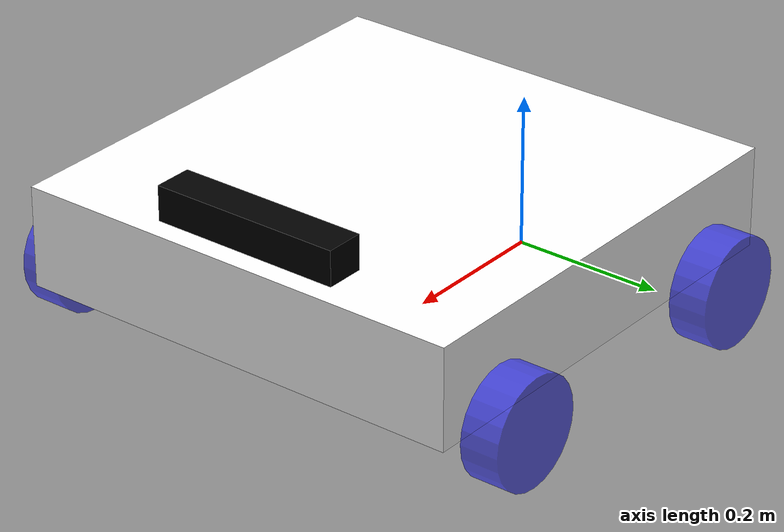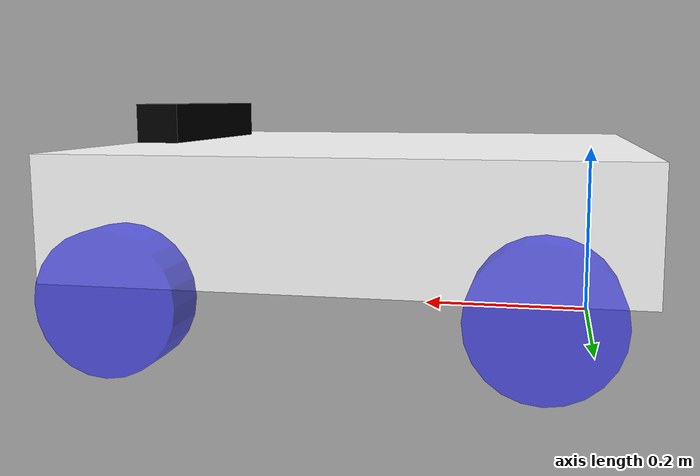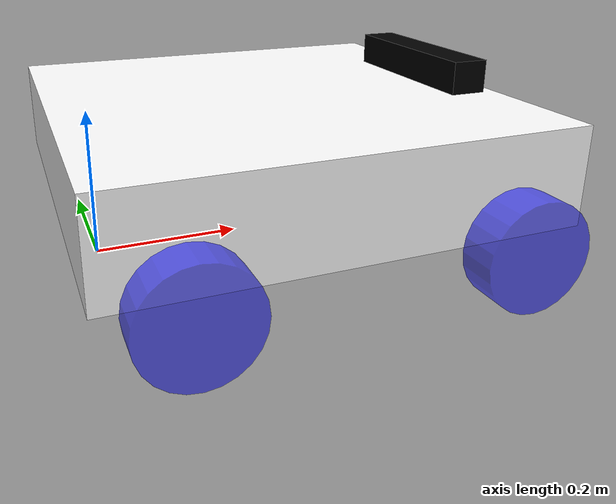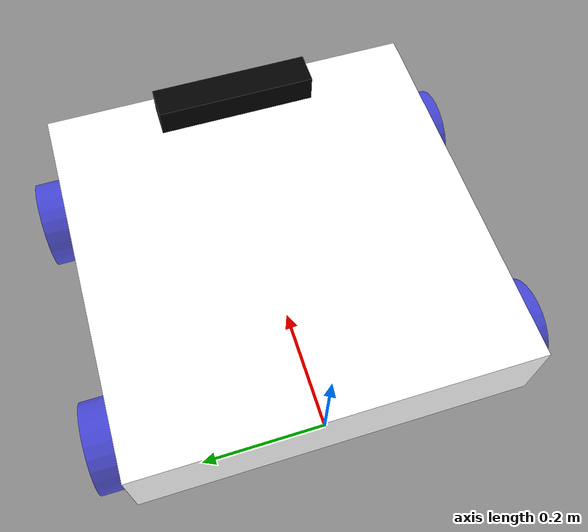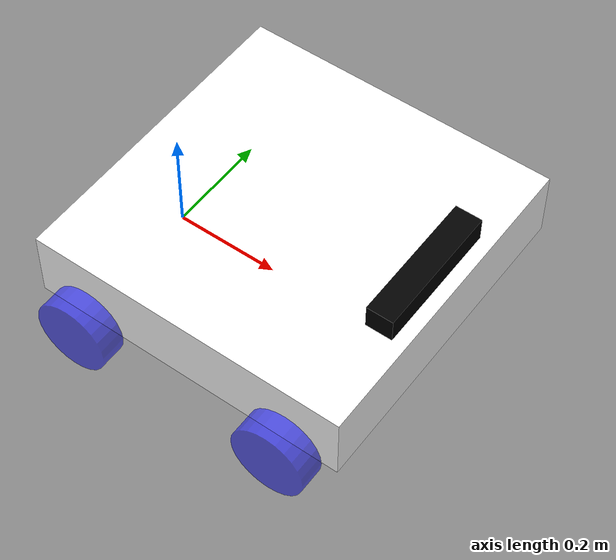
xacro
<?xml version="1.0"?>
<robot xmlns:xacro="http://www.ros.org/wiki/xacro"  name="robot">

    <xacro:include filename="robot_core.xacro"/>
    <xacro:include filename="ros2_control.xacro"/>
    <xacro:include filename="camera.xacro"/>

</robot>

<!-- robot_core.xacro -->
<robot xmlns:xacro="http://www.ros.org/wiki/xacro">

    <!--INCLUDES-->

    <xacro:include filename="inertial_macros.xacro"/>

    <!-- COLORS-->

    <material name="white">
        <color rgba="1 1 1 1"/>
    </material>

    <material name="green">
        <color rgba="0 0.6 0 1"/>
    </material>

    <material name="yellow">
        <color rgba="0.8 0.8 0 1"/>
    </material>

    <material name="blue">
        <color rgba="0.2 0.2 1 0.7"/>
    </material>

    <material name="black">
        <color rgba="0 0 0 1"/>
    </material>

    <!-- BASE LINK-->

    <link name="base_link">

    </link>

    <!-- CHASSIS LINK-->

    <joint name="chassis_joint" type="fixed">
        <parent link="base_link"/>
        <child link="chassis_link"/>
        <origin xyz="0.1 0 0.05" rpy="0 0 0"/>
    </joint>

    <link name="chassis_link">
        <visual>
            <origin xyz="0.15 0 0.09" rpy="0 0 0"/>
            <geometry>
                <box size="0.6 0.6 0.13"/>
            </geometry>
            <material name="white"/>
        </visual>
        <collision>
            <origin xyz="0.15 0 0.09" rpy="0 0 0"/>
            <geometry>
                <box size="0.6 0.6 0.13"/>
            </geometry>
        </collision>
        <xacro:inertial_box mass="18" x="0.6" y="0.6" z="0.13">
            <origin xyz="0.15 0 0.09" rpy="0 0 0"/>
        </xacro:inertial_box>
    </link>

    <gazebo reference="chassis">
        <material>Gazebo/White</material>
    </gazebo>

    <!-- TOP LEFT WHEEL LINK-->

    <joint name="top_left_wheel_joint" type="continuous">
        <parent link="base_link"/>
        <child link="top_left_wheel_link"/>
        <origin xyz="0.45 0.325 0.07" rpy="-${pi/2} 0 0"/>
        <axis xyz="0 0 1"/>

    </joint>

    <link name="top_left_wheel_link">
        <visual>
            <geometry>
                <cylinder radius="0.07" length="0.05"/>
            </geometry>
            <material name="blue"/>
        </visual>
        <collision>
            <geometry>
                <cylinder radius="0.07" length="0.05"/>
            </geometry>
        </collision>
        <xacro:inertial_cylinder mass="0.5" length="0.05" radius="0.07">
            <origin xyz="0.45 0.325 0.07" rpy="0 0 0"/>
        </xacro:inertial_cylinder>

    </link>

    <gazebo reference="top_left_wheel">
        <material>blue</material>
    </gazebo>

    <!-- TOP RIGHT WHEEL LINK-->

    <joint name="top_right_wheel_joint" type="continuous">
        <parent link="base_link"/>
        <child link="top_right_wheel_link"/>
        <origin xyz="0.45 -0.325 0.07" rpy="${pi/2} 0 0"/>
        <axis xyz="0 0 -1"/>

    </joint>

    <link name="top_right_wheel_link">
        <visual>
            <geometry>
                <cylinder radius="0.07" length="0.05"/>
            </geometry>
            <material name="blue"/>
        </visual>
        <collision>
            <geometry>
                <cylinder radius="0.07" length="0.05"/>
            </geometry>
        </collision>
        <xacro:inertial_cylinder mass="0.5" length="0.05" radius="0.07">
            <origin xyz="0.45 -0.325 0.07" rpy="0 0 0"/>
        </xacro:inertial_cylinder>

    </link>

    <gazebo reference="top_right_wheel">
        <material>blue</material>
    </gazebo>

    <!-- BOTTOM LEFT WHEEL LINK-->

    <joint name="bottom_left_wheel_joint" type="continuous">
        <parent link="base_link"/>
        <child link="bottom_left_wheel_link"/>
        <origin xyz="0.05 0.325 0.07" rpy="-${pi/2} 0 0"/>
        <axis xyz="0 0 1"/>

    </joint>

    <link name="bottom_left_wheel_link">
        <visual>
            <geometry>
                <cylinder radius="0.07" length="0.05"/>
            </geometry>
            <material name="blue"/>
        </visual>
        <collision>
            <geometry>
                <cylinder radius="0.07" length="0.05"/>
            </geometry>
        </collision>
        <xacro:inertial_cylinder mass="0.5" length="0.05" radius="0.07">
            <origin xyz="0.05 0.325 0.07" rpy="0 0 0"/>
        </xacro:inertial_cylinder>

    </link>

    <gazebo reference="bottom_left_wheel">
        <material>blue</material>
    </gazebo>

    <!-- BOTTOM RIGHT WHEEL LINK-->

    <joint name="bottom_right_wheel_joint" type="continuous">
        <parent link="base_link"/>
        <child link="bottom_right_wheel_link"/>
        <origin xyz="0.05 -0.325 0.07" rpy="${pi/2} 0 0"/>
        <axis xyz="0 0 -1"/>

    </joint>

    <link name="bottom_right_wheel_link">
        <visual>
            <geometry>
                <cylinder radius="0.07" length="0.05"/>
            </geometry>
            <material name="blue"/>
        </visual>
        <collision>
            <geometry>
                <cylinder radius="0.07" length="0.05"/>
            </geometry>
        </collision>
        <xacro:inertial_cylinder mass="0.5" length="0.05" radius="0.07">
            <origin xyz="0.05 -0.325 0.07" rpy="0 0 0"/>
        </xacro:inertial_cylinder>

    </link>

    <gazebo reference="bottom_right_wheel">
        <material>blue</material>
    </gazebo>

</robot>

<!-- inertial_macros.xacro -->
<robot xmlns:xacro="http://www.ros.org/wiki/xacro" name="robot">

    <!-- Specify some standard inertial calculations https://en.wikipedia.org/wiki/List_of_moments_of_inertia -->
    <!-- These make use of xacro's mathematical functionality -->

    <xacro:macro name="inertial_sphere" params="mass radius *origin">
        <inertial>
            <xacro:insert_block name="origin"/>
            <mass value="${mass}" />
            <inertia ixx="${(2/5) * mass * (radius*radius)}" ixy="0.0" ixz="0.0"
                    iyy="${(2/5) * mass * (radius*radius)}" iyz="0.0"
                    izz="${(2/5) * mass * (radius*radius)}" />
        </inertial>
    </xacro:macro>

    <xacro:macro name="inertial_box" params="mass x y z *origin">
        <inertial>
            <xacro:insert_block name="origin"/>
            <mass value="${mass}" />
            <inertia ixx="${(1/12) * mass * (y*y+z*z)}" ixy="0.0" ixz="0.0"
                    iyy="${(1/12) * mass * (x*x+z*z)}" iyz="0.0"
                    izz="${(1/12) * mass * (x*x+y*y)}" />
        </inertial>
    </xacro:macro>

    <xacro:macro name="inertial_cylinder" params="mass length radius *origin">
        <inertial>
            <xacro:insert_block name="origin"/>
            <mass value="${mass}" />
            <inertia ixx="${(1/12) * mass * (3*radius*radius + length*length)}" ixy="0.0" ixz="0.0"
                    iyy="${(1/12) * mass * (3*radius*radius + length*length)}" iyz="0.0"
                    izz="${(1/2) * mass * (radius*radius)}" />
        </inertial>
    </xacro:macro>

</robot>

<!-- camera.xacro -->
<robot xmlns:xacro="http://www.ros.org/wiki/xacro" >

    <joint name="camera_joint" type="fixed">
        <parent link="chassis_link"/>
        <child link="camera_link"/>
        <origin xyz="0.4 0 0.18" rpy="0 0 0"/>
    </joint>

    <link name="camera_link">
        <visual>
            <geometry>
                <box size="0.05 0.25 0.045"/>
            </geometry>
            <material name="black"/>
        </visual>
    </link>

    <joint name="camera_optical_joint" type="fixed">
        <parent link="camera_link"/>
        <child link="camera_link_optical"/>
        <origin xyz="0 0 0" rpy="${-pi/2} 0 ${-pi/2}"/>
    </joint>

    <link name="camera_link_optical"></link>

    <gazebo reference="camera_link">
        <material>black</material>

        <sensor name="camera" type="camera">
            <pose> 0 0 0 0 0 0 </pose>
            <visualize>true</visualize>
            <update_rate>10</update_rate>
            <camera>
                <camera_info_topic>camera/camera_info</camera_info_topic>
                <horizontal_fov>1.089</horizontal_fov>
                <image>
                    <format>R8G8B8</format>
                    <width>640</width>
                    <height>480</height>
                </image>
                <clip>
                    <near>0.1</near>
                    <far>15</far>
                </clip>
                <noise>
                    <type>gaussian</type>
                    <mean>0.0</mean>
                    <stddev>0.007</stddev>
                </noise>
                <optical_frame_id>camera_link_optical</optical_frame_id>
                <camera_info_topic>camera/camera_info</camera_info_topic>
            </camera>
                <always_on>1</always_on>
                <update_rate>20</update_rate>
                <visualize>true</visualize>
                <topic>camera/image_raw</topic>
            </sensor>
        </gazebo>

</robot>
